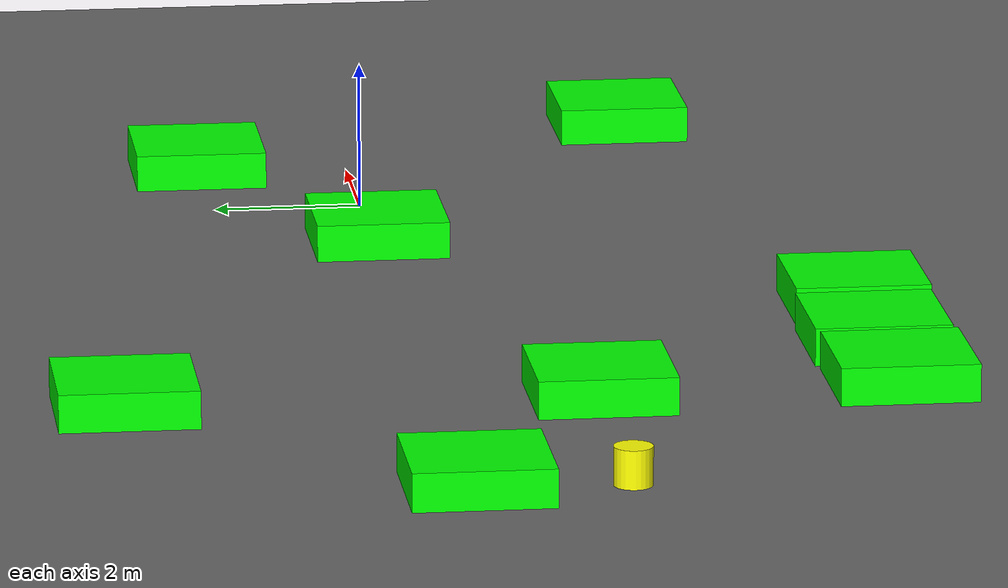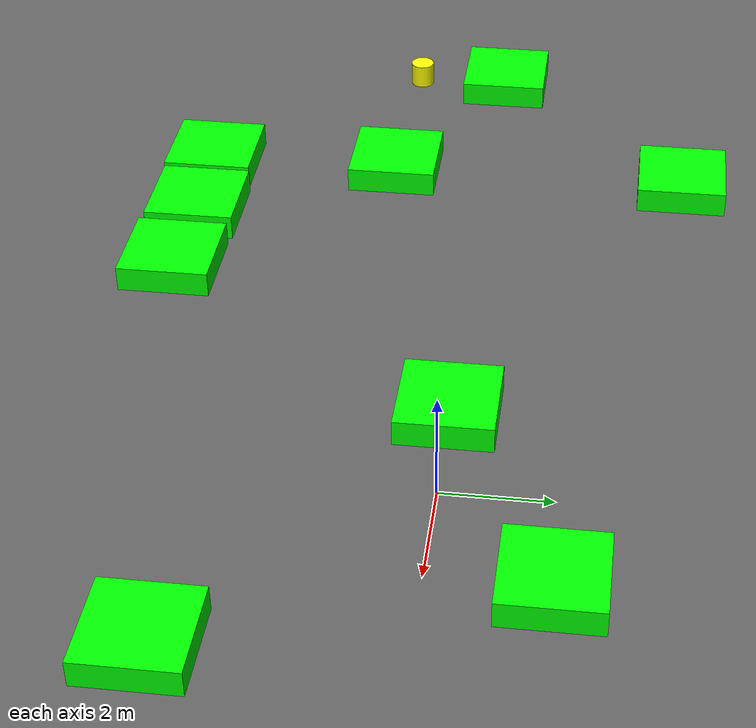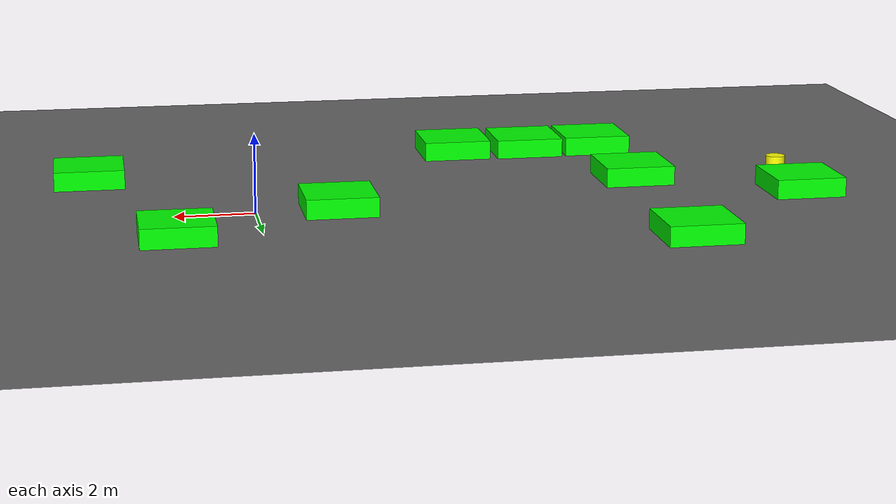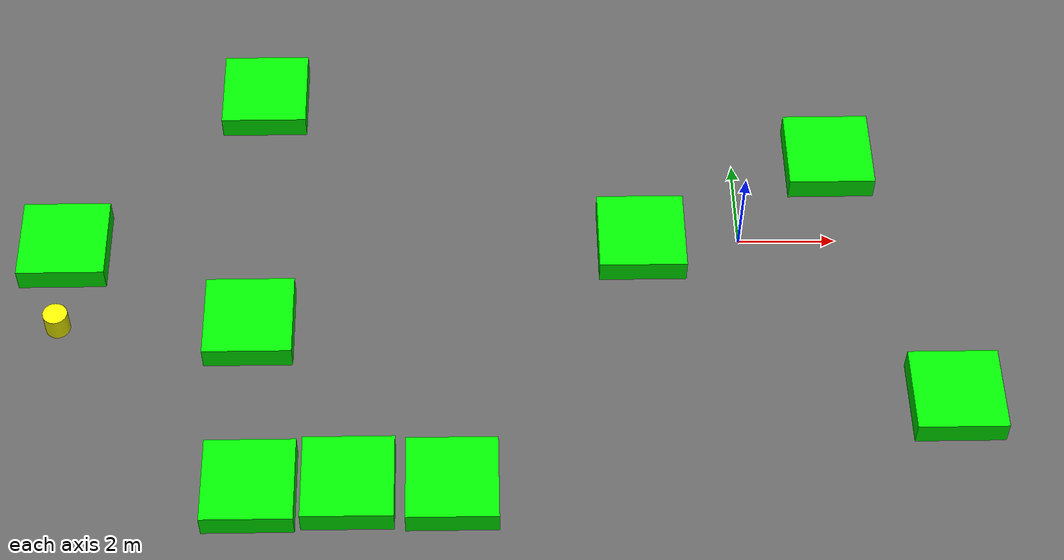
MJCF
<mujoco model="lvl4_standard_obs9_d2mid_seed2033">
    <compiler angle="degree" coordinate="local" inertiafromgeom="true"/>
    <option integrator="RK4" timestep="0.01"/>

    <asset>
        <texture builtin="gradient" height="100" rgb1="0.6 0.8 1" rgb2="0 0 0" type="skybox" width="100"/>
        <texture name="floor_texture" type="2d" builtin="checker" width="100" height="100" rgb1="0 0 0" rgb2="0.8 0.8 0.8"/>
        <material name="MatPlane" reflectance="0.5" shininess="1" specular="1" texrepeat="10 10" texture="floor_texture"/>
    </asset>

    <!-- Excluding the contact between the agent and the goal, and the agent and the floor -->
    <contact>
        <exclude body1="agent" body2="goal"/>
        <exclude body1 = "agent" body2 = "floor"/>
    </contact>

    <extension>
        <plugin plugin = "mujoco.pid">
            <instance name = "pid1">
                <config key="kp" value="2"/>
                <config key="ki" value="0"/>
                <config key="kd" value="55"/>
            </instance>
        </plugin>
    </extension>

    <worldbody>
        <light cutoff="100" diffuse="1 1 1" dir="-0 0 -1.3" directional="true" exponent="1" pos="0 0 1.3" specular=".1 .1 .1"/>
        <body name="floor" pos="0 0 0">
            <geom name="floor_geom" type="plane" size="20 20 0.1" material="MatPlane"/>
        </body>

                <body name="goal" pos="0.0000 0.0000 0">
            <geom name="goal_geom" type="plane" size="0.5 0.5 1" pos="0 0 0" rgba="1 0 0 1"/>
        </body>

                <body name="agent" pos="-14.0000 -2.0000 0.250">
            <joint name="j1" type="slide" axis ="1 0 0 "/>
            <joint name="j2" type="slide" axis ="0 1 0 "/>
            <geom name="agent_geom" type="cylinder" size="0.25 0.25 0.250" rgba="1 1 0 1"/>
        </body>

        <body name="obstacle1" pos="-10.0215 3.9835 0.250">  <geom name="obstacle1_geom" type="box" size="0.9000 0.9000 0.250" rgba="0 1 0 1"/></body>
        <body name="obstacle2" pos="2.0423 2.0975 0.250">  <geom name="obstacle2_geom" type="box" size="0.9000 0.9000 0.250" rgba="0 1 0 1"/></body>
        <body name="obstacle3" pos="-14.0112 -0.0632 0.250">  <geom name="obstacle3_geom" type="box" size="0.9000 0.9000 0.250" rgba="0 1 0 1"/></body>
        <body name="obstacle4" pos="-2.0485 -0.0353 0.250">  <geom name="obstacle4_geom" type="box" size="0.9000 0.9000 0.250" rgba="0 1 0 1"/></body>
        <body name="obstacle5" pos="-10.0932 -2.0807 0.250">  <geom name="obstacle5_geom" type="box" size="0.9000 0.9000 0.250" rgba="0 1 0 1"/></body>
        <body name="obstacle6" pos="3.9945 -4.0870 0.250">  <geom name="obstacle6_geom" type="box" size="0.9000 0.9000 0.250" rgba="0 1 0 1"/></body>
        <body name="obstacle7" pos="-9.9156 -5.9745 0.250">  <geom name="obstacle7_geom" type="box" size="0.9000 0.9000 0.250" rgba="0 1 0 1"/></body>
        <body name="obstacle8" pos="-8.0010 -5.9298 0.250">  <geom name="obstacle8_geom" type="box" size="0.9000 0.9000 0.250" rgba="0 1 0 1"/></body>
        <body name="obstacle9" pos="-5.9916 -5.9762 0.250">  <geom name="obstacle9_geom" type="box" size="0.9000 0.9000 0.250" rgba="0 1 0 1"/></body>

    </worldbody>

    <sensor>
<!-- SENSORS -->

        <distance name="dist1" geom1="agent_geom" geom2="obstacle1_geom" cutoff="1.5"/>
        <distance name="dist2" geom1="agent_geom" geom2="obstacle2_geom" cutoff="1.5"/>
        <distance name="dist3" geom1="agent_geom" geom2="obstacle3_geom" cutoff="1.5"/>
        <distance name="dist4" geom1="agent_geom" geom2="obstacle4_geom" cutoff="1.5"/>
        <distance name="dist5" geom1="agent_geom" geom2="obstacle5_geom" cutoff="1.5"/>
        <distance name="dist6" geom1="agent_geom" geom2="obstacle6_geom" cutoff="1.5"/>
        <distance name="dist7" geom1="agent_geom" geom2="obstacle7_geom" cutoff="1.5"/>
        <distance name="dist8" geom1="agent_geom" geom2="obstacle8_geom" cutoff="1.5"/>
        <distance name="dist9" geom1="agent_geom" geom2="obstacle9_geom" cutoff="1.5"/>
</sensor>

    <actuator>
        <plugin joint="j1" plugin="mujoco.pid" instance="pid1" />
        <plugin joint="j2" plugin="mujoco.pid" instance="pid1"/>
    </actuator>
</mujoco>
